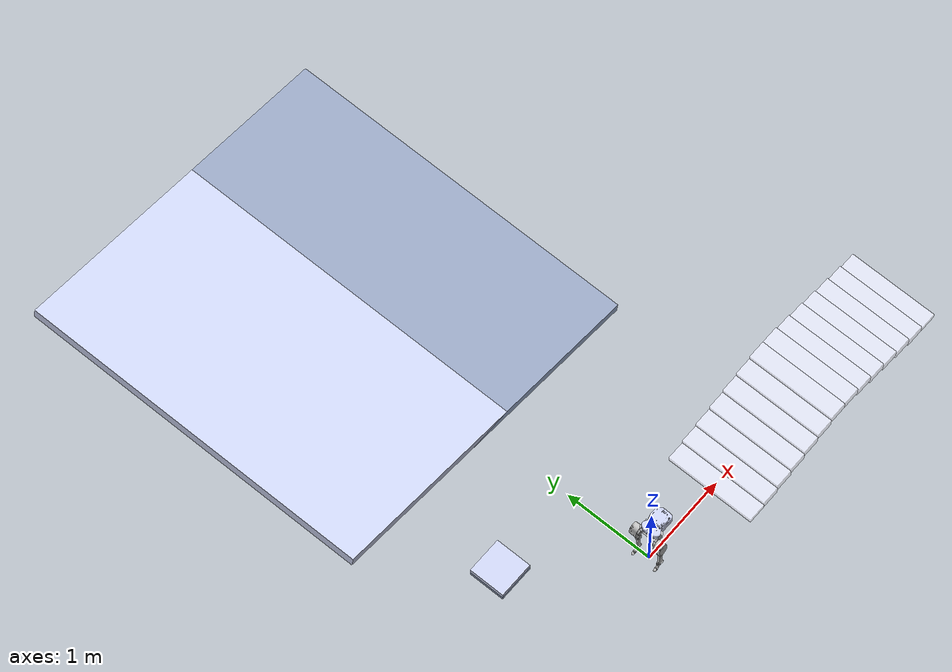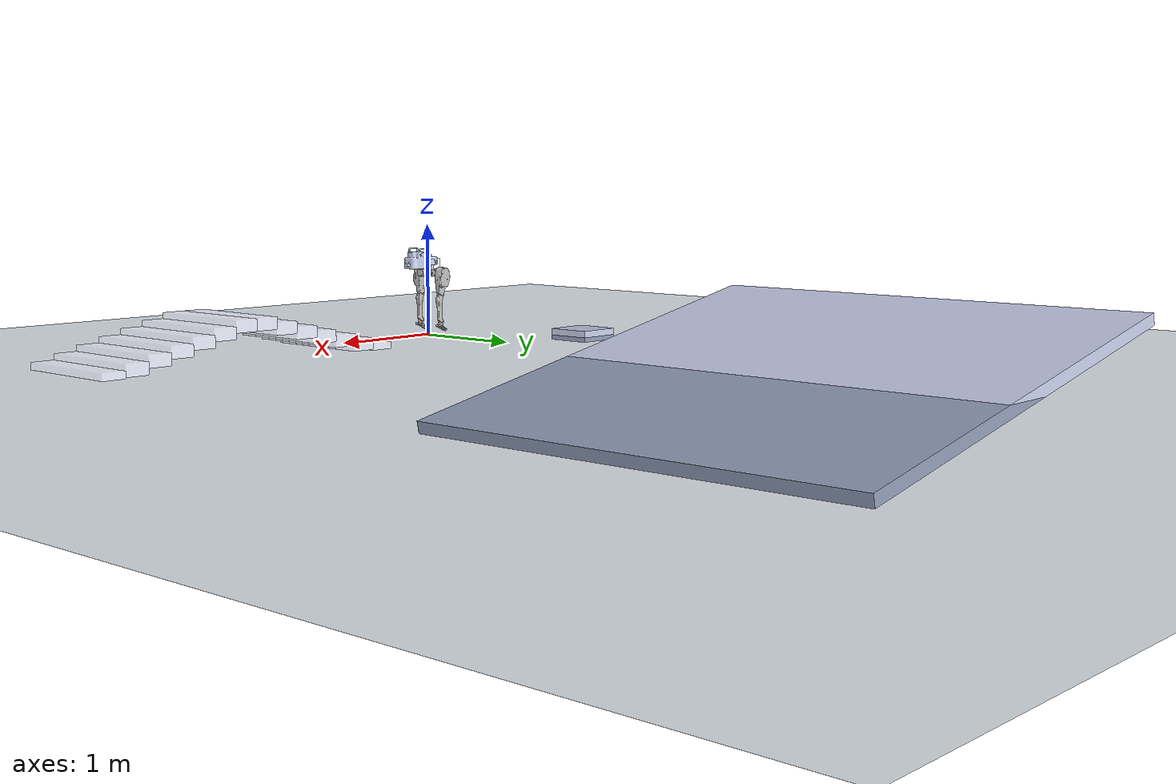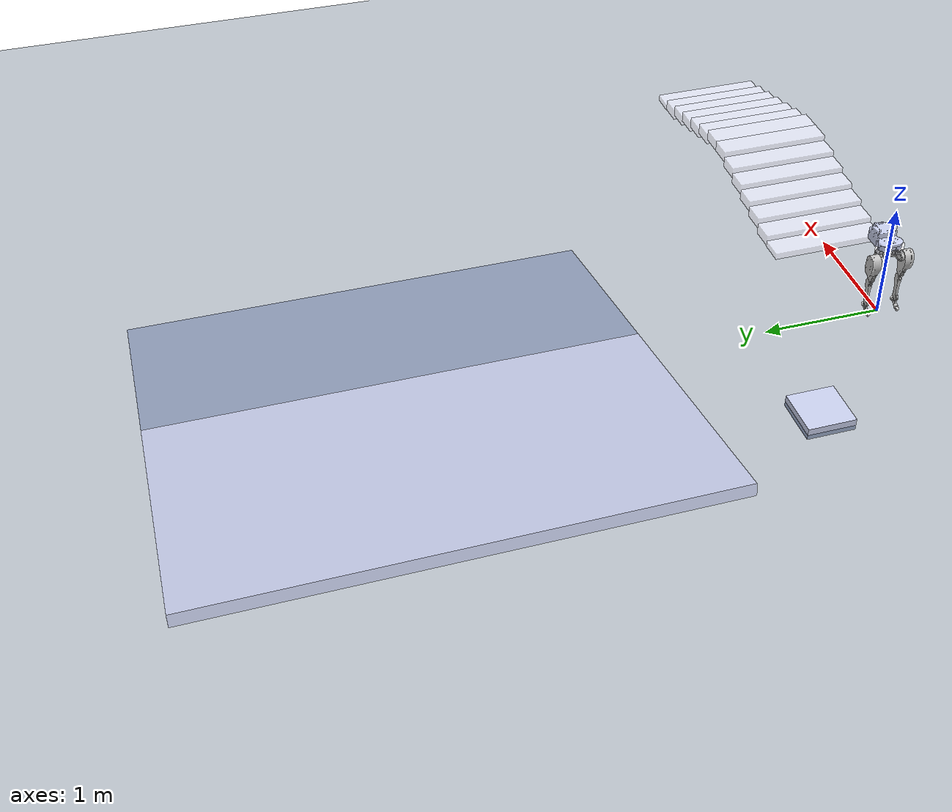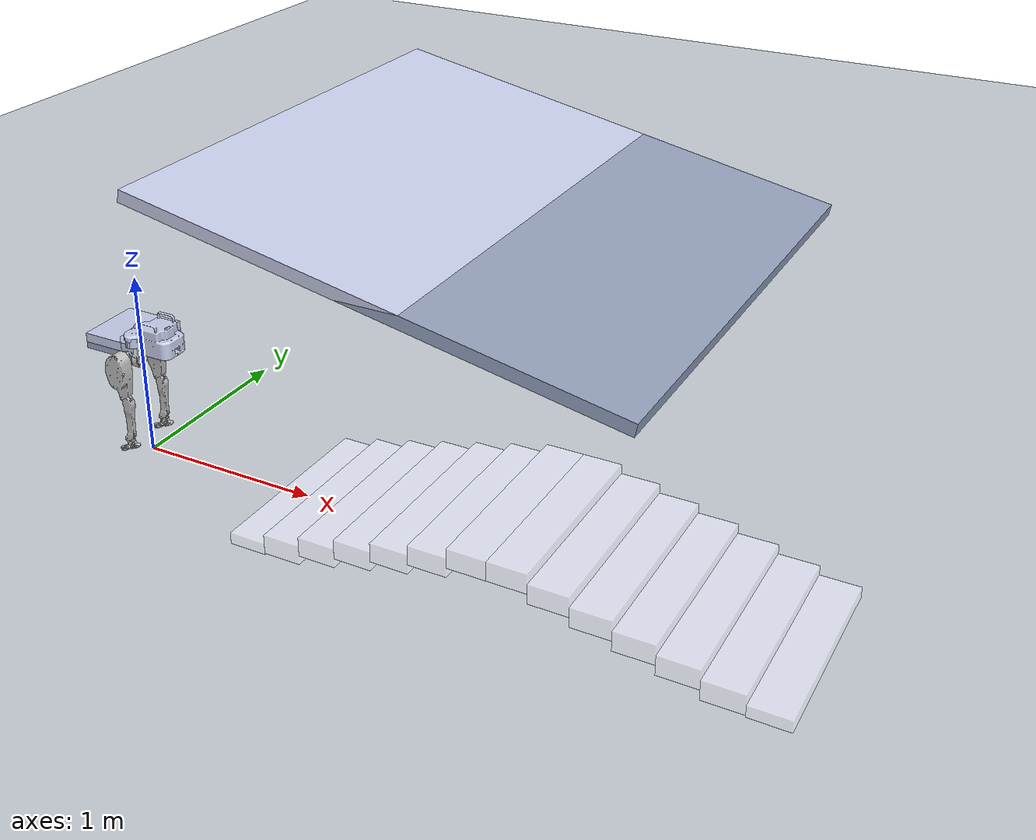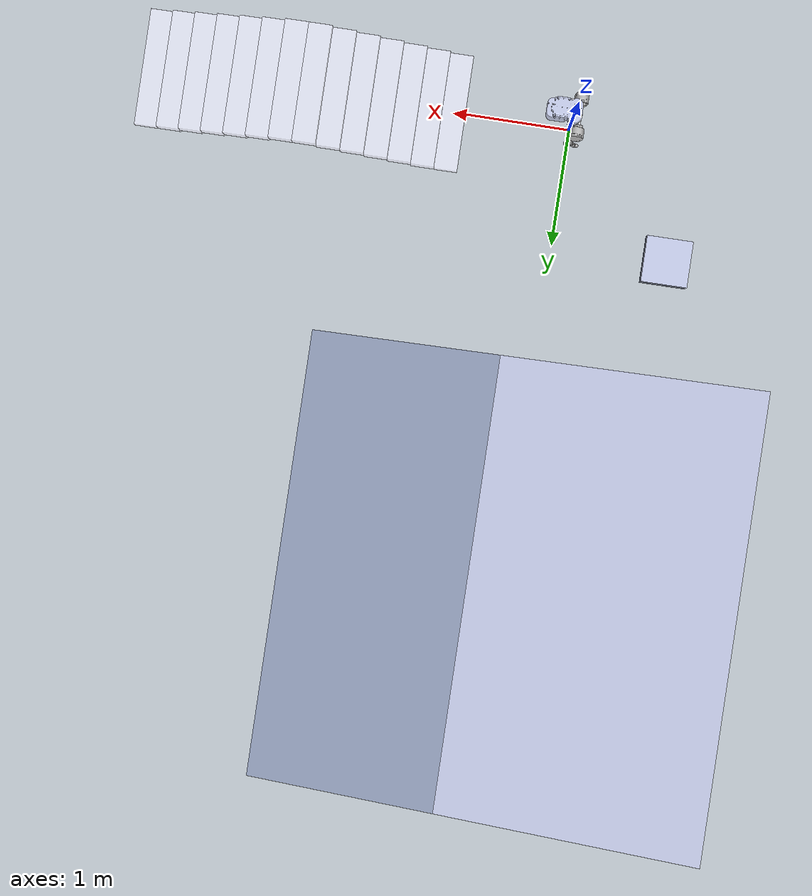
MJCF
<mujoco model="scene_birdy_v1_L">
  <include file="custom.xml"/>
  <include file="birdy_v1_L.xml"/>
  <visual>
    <headlight diffuse="0.6 0.6 0.6"  ambient="0.1 0.1 0.1" specular="0 0 0"/>
    <rgba haze="0.15 0.25 0.35 1"/>
    <global azimuth="120" elevation="-20"/>
  </visual>

  <asset>
    <texture type="skybox" builtin="gradient" rgb1="0.3 0.5 0.7" rgb2="0 0 0" width="512"
        height="3072"/>
    <texture type="2d" name="groundplane" builtin="checker" mark="edge" rgb1="0.2 0.3 0.4"
        rgb2="0.1 0.2 0.3" markrgb="0.8 0.8 0.8" width="300" height="300"/>
    <material name="groundplane" texture="groundplane" texuniform="true" texrepeat="5 5"
        reflectance="0.2"/>
  </asset>

  <worldbody>
    <light pos="0 0 1.5" dir="0 0 -1" directional="true"/>
    <geom name="geom_floor" size="0 0 0.05" type="plane" material="groundplane"/>
  </worldbody>
</mujoco>

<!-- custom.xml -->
<mujoco>
<asset>
    <material name="red" specular="0.5" shininess="0.25" rgba="0.9 0.0 0.0 0.5"/>
</asset>

<default>
 <default class="visual">
  <geom type="mesh" rgba="0.79216 0.81961 0.93333 1" contype="0" conaffinity="0" group="2"/>
 </default>

 <default class="collision_rod">
  <geom type="cylinder" material="red" group="1"/>
 </default>

 <default class="collision_box">
   <geom type="box" material="red" group="1"/>
 </default>
 <default class="collision_sphere">
   <geom type="sphere" material="red" group="1"/>
 </default>
 <default class="collision_motor">
  <geom type="cylinder" material="red" size="0.05 0.02" group="1"/>
 </default>

 <default class="collision">
  <geom type="mesh" material="red" group="1"/>
 </default>

 <default class="active">
  <!--tested good param with low sim-to-real gap -->
  <joint armature="1e-4" damping="0.02" frictionloss="0.02"/>
 </default>

 <default class="passive">
  <joint armature="1e-3" damping="0.01" frictionloss="0.01"/>
 </default>
</default>

<!-- terrain-->
<!-- stairs-->
<worldbody>
    <geom type="box" pos= "1 0 0" size="0.1 0.5 0.05" rgba="0.79216 0.81961 0.93333 0.5" solref="1e-3 1"/>
    <geom type="box" pos= "1.2 0 0.05" size="0.1 0.5 0.05" rgba="0.79216 0.81961 0.93333 0.5" solref="1e-3 1"/>
    <geom type="box" pos= "1.4 0 0.1" size="0.1 0.5 0.05" rgba="0.79216 0.81961 0.93333 0.5" solref="1e-3 1"/>
    <geom type="box" pos= "1.6 0 0.15" size="0.1 0.5 0.05" rgba="0.79216 0.81961 0.93333 0.5" solref="1e-3 1"/>
    <geom type="box" pos= "1.8 0 0.2" size="0.1 0.5 0.05" rgba="0.79216 0.81961 0.93333 0.5" solref="1e-3 1"/>
    <geom type="box" pos= "2.0 0 0.25" size="0.1 0.5 0.05" rgba="0.79216 0.81961 0.93333 0.5" solref="1e-3 1"/>
    <geom type="box" pos= "2.2 0 0.3" size="0.1 0.5 0.05" rgba="0.79216 0.81961 0.93333 0.5" solref="1e-3 1"/>

    <geom type="box" pos= "2.4 0 0.3" size="0.1 0.5 0.05" rgba="0.79216 0.81961 0.93333 0.5" solref="1e-3 1"/>
    <geom type="box" pos= "2.6 0 0.25" size="0.1 0.5 0.05" rgba="0.79216 0.81961 0.93333 0.5" solref="1e-3 1"/>
    <geom type="box" pos= "2.8 0 0.2" size="0.1 0.5 0.05" rgba="0.79216 0.81961 0.93333 0.5" solref="1e-3 1"/>
    <geom type="box" pos= "3.0 0 0.15" size="0.1 0.5 0.05" rgba="0.79216 0.81961 0.93333 0.5" solref="1e-3 1"/>
    <geom type="box" pos= "3.2 0 0.1" size="0.1 0.5 0.05" rgba="0.79216 0.81961 0.93333 0.5" solref="1e-3 1"/>
    <geom type="box" pos= "3.4 0 0.05" size="0.1 0.5 0.05" rgba="0.79216 0.81961 0.93333 0.5" solref="1e-3 1"/>
    <geom type="box" pos= "3.6 0 0.0" size="0.1 0.5 0.05" rgba="0.79216 0.81961 0.93333 0.5" solref="1e-3 1"/>

</worldbody>

<!-- platform-->
<worldbody>
    <geom type="box" pos= "-1 1 0" size="0.2 0.2 0.05" rgba="0.79216 0.81961 0.93333 1" solref="1e-3 1"/>
</worldbody>

<!-- slope-->
<worldbody>
    <geom type="box" pos= "0 4 0" quat="1 0 0.1 0" size="2 2 0.05" rgba="0.79216 0.81961 0.93333 1" solref="1e-3 1"/>
</worldbody>

</mujoco>

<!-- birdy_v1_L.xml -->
<mujoco model="birdy_v1_L">
  <compiler angle="radian" meshdir="../meshes/" autolimits="true"/>
  <asset>
    <mesh name="TRUNK" file="TRUNK_LOWER_LIMB.STL"/>
    <mesh name="HIP_ROLL_MOTOR_left" file="HIP_ROLL_MOTOR_left.STL"/>
    <mesh name="HIP_PITCH_MOTOR_left" file="HIP_PITCH_MOTOR_left.STL"/>
    <mesh name="THIGH_left" file="THIGH_left.STL"/>
    <mesh name="CALF_left" file="CALF_left.STL"/>
    <mesh name="FOOT_HEEL" file="FOOT_HEEL.STL"/>
    <mesh name="FOOT_TOE" file="FOOT_TOE.STL"/>
    <mesh name="FOOT_SHOE" file="FOOT_SHOE.STL"/>
    <mesh name="HIP_ROLL_MOTOR_right" file="HIP_ROLL_MOTOR_right.STL"/>
    <mesh name="HIP_PITCH_MOTOR_right" file="HIP_PITCH_MOTOR_right.STL"/>
    <mesh name="THIGH_right" file="THIGH_right.STL"/>
    <mesh name="CALF_right" file="CALF_right.STL"/>
  </asset>
  <worldbody>
    <body name="link_trunk" pos="0 0 0.65">
      <inertial pos="0.145 0 0.0274" quat="-0.00635543 0.693121 -0.00531223 0.720774" mass="4.4369" diaginertia="0.0371704 0.0338999 0.0170217"/>
      <joint name="joint_fixed_world" type="free"/>
      <geom type="mesh" contype="0" conaffinity="0" group="1" density="0" rgba="0.79216 0.81961 0.93333 1" mesh="TRUNK"/>
      <geom size="0.05 0.1 0.05" type="box" rgba="0.79216 0.81961 0.93333 0.1"/>
      <body name="link_left_hip1" pos="0 -0.061 -0.078">
        <inertial pos="0.0258 0.0003 0.0072" quat="0.999406 -0.00368641 0.0325393 -0.0107538" mass="0.4618" diaginertia="0.000527591 0.000410146 0.000287544"/>
        <joint class="active" name="joint_left_hip_yaw" pos="0 0 0" axis="0 0 1" range="-2.98451 2.98451"/>
        <geom type="mesh" contype="0" conaffinity="0" group="1" density="0" rgba="0.752941 0.752941 0.752941 1" mesh="HIP_ROLL_MOTOR_left"/>
        <body name="link_left_hip2" pos="-0.04 0 0">
          <inertial pos="0.0014 -0.0362 0" quat="0.544526 0.543892 0.451913 0.451052" mass="0.4221" diaginertia="0.000406728 0.000312156 0.000267317"/>
          <joint class="active" name="joint_left_hip_roll" pos="0 0 0" axis="1 0 0" range="-3.14 3.14"/>
          <geom type="mesh" contype="0" conaffinity="0" group="1" density="0" rgba="0.752941 0.752941 0.752941 1" mesh="HIP_PITCH_MOTOR_left"/>
          <body name="link_left_thigh" pos="0 -0.0715 0">
            <inertial pos="0.0019 -0.0168 -0.0491" quat="0.730791 0.00928832 0.0310298 0.681832" mass="1.2707" diaginertia="0.00512429 0.00472956 0.00149245"/>
            <joint class="active" name="joint_left_thigh_pitch" pos="0 0 0" axis="0 1 0" range="-3.14 3.14"/>
            <geom type="mesh" contype="0" conaffinity="0" group="1" density="0" rgba="0.752941 0.752941 0.752941 1" mesh="THIGH_left"/>
            <body name="link_left_calf" pos="0 0 -0.2">
              <inertial pos="0.02422 0 -0.103491" quat="0.704725 -0.00409177 -0.00372737 0.709459" mass="0.218165" diaginertia="0.00140017 0.0013533 0.000102796"/>
              <joint class="active" name="joint_left_calf_pitch" pos="0 0 0" axis="0 1 0" range="-3.14 3.14"/>
              <geom type="mesh" contype="0" conaffinity="0" group="1" density="0" rgba="0.752941 0.752941 0.752941 1" mesh="CALF_left"/>
              <body name="link_left_foot" pos="0 0 -0.25">
                <inertial pos="0.0065 0 -0.044826" quat="0.358759 0.606751 0.613894 0.355358" mass="0.150205" diaginertia="0.000283562 0.000258242 5.56389e-05"/>
                <joint class="active" name="joint_left_ankle" pos="0 0 0" axis="0 1 0" range="-3.14 3.14"/>
                <geom type="mesh" contype="0" conaffinity="0" group="1" density="0" rgba="0.752941 0.752941 0.752941 1" mesh="FOOT_HEEL"/>
                <geom type="mesh" contype="0" conaffinity="0" group="1" density="0" rgba="0.752941 0.752941 0.752941 1" mesh="FOOT_TOE"/>
                <geom size="0.005" pos="-0.02 0 -0.075" type="sphere" material="red" group="2"/>
                <geom size="0.005" pos="0.06 0 -0.038"  type="sphere" material="red" group="2"/>
                <geom size="0.005" pos="0.02 0 -0.0565"  type="sphere" material="red" group="2"/>
              </body>
            </body>
          </body>
        </body>
      </body>
      <body name="link_right_hip1" pos="0 0.061 -0.078">
        <inertial pos="0.0258 -0.0003 0.0072" quat="0.999406 0.00368641 0.0325393 0.0107538" mass="0.4618" diaginertia="0.000527591 0.000410146 0.000287544"/>
        <joint class="active" name="joint_right_hip_yaw" pos="0 0 0" axis="0 0 1" range="-2.98451 2.98451"/>
        <geom type="mesh" contype="0" conaffinity="0" group="1" density="0" rgba="0.752941 0.752941 0.752941 1" mesh="HIP_ROLL_MOTOR_right"/>
        <body name="link_right_hip2" pos="-0.04 0 0">
          <inertial pos="0.0014 0.0362 0" quat="0.451913 0.451052 0.544526 0.543892" mass="0.4221" diaginertia="0.000406728 0.000312156 0.000267317"/>
          <joint class="active" name="joint_right_hip_roll" pos="0 0 0" axis="1 0 0" range="-3.14 3.14"/>
          <geom type="mesh" contype="0" conaffinity="0" group="1" density="0" rgba="0.752941 0.752941 0.752941 1" mesh="HIP_PITCH_MOTOR_right"/>
          <body name="link_right_thigh" pos="0 0.0715 0">
            <inertial pos="0.0019 0.0168 -0.0491" quat="0.681832 0.0310298 0.00928832 0.730791" mass="1.2707" diaginertia="0.00512429 0.00472956 0.00149245"/>
            <joint class="active" name="joint_right_thigh_pitch" pos="0 0 0" axis="0 1 0" range="-3.14 3.14"/>
            <geom type="mesh" contype="0" conaffinity="0" group="1" density="0" rgba="0.752941 0.752941 0.752941 1" mesh="THIGH_right"/>
            <body name="link_right_calf" pos="0 0 -0.2">
              <inertial pos="0.02422 0 -0.103491" quat="0.709459 -0.00372737 -0.00409177 0.704725" mass="0.21302" diaginertia="0.00140017 0.0013533 0.000102796"/>
              <joint class="active" name="joint_right_calf_pitch" pos="0 0 0" axis="0 1 0" range="-3.14 3.14"/>
              <geom type="mesh" contype="0" conaffinity="0" group="1" density="0" rgba="0.752941 0.752941 0.752941 1" mesh="CALF_right"/>
              <body name="link_right_foot" pos="0 0 -0.25">
                <inertial pos="0.0065 0 -0.044826" quat="0.358759 0.606751 0.613894 0.355358" mass="0.150205" diaginertia="0.000283562 0.000258242 5.56389e-05"/>
                <joint class="active" name="joint_right_ankle" pos="0 0 0" axis="0 1 0" range="-3.14 3.14"/>
                <geom type="mesh" contype="0" conaffinity="0" group="1" density="0" rgba="0.752941 0.752941 0.752941 1" mesh="FOOT_HEEL"/>
                <geom type="mesh" contype="0" conaffinity="0" group="1" density="0" rgba="0.752941 0.752941 0.752941 1" mesh="FOOT_TOE"/>
                <geom size="0.005" pos="-0.02 0 -0.075" type="sphere" material="red" group="2"/>
                <geom size="0.005" pos="0.06 0 -0.038"  type="sphere" material="red" group="2"/>
                <geom size="0.005" pos="0.02 0 -0.0565"  type="sphere" material="red" group="2"/>
              </body>
            </body>
          </body>
        </body>
      </body>
    </body>
  </worldbody>
  <actuator>
    <motor name="joint_left_1" joint="joint_left_hip_yaw" ctrlrange="-20 20"/>
    <motor name="joint_left_2" joint="joint_left_hip_roll" ctrlrange="-20 20"/>
    <motor name="joint_left_3" joint="joint_left_thigh_pitch" ctrlrange="-20 20"/>
    <motor name="joint_left_4" joint="joint_left_calf_pitch" ctrlrange="-20 20"/>
    <motor name="joint_left_5" joint="joint_left_ankle" ctrlrange="-20 20"/>
    <motor name="joint_right_1" joint="joint_right_hip_yaw" ctrlrange="-20 20"/>
    <motor name="joint_right_2" joint="joint_right_hip_roll" ctrlrange="-20 20"/>
    <motor name="joint_right_3" joint="joint_right_thigh_pitch" ctrlrange="-20 20"/>
    <motor name="joint_right_4" joint="joint_right_calf_pitch" ctrlrange="-20 20"/>
    <motor name="joint_right_5" joint="joint_right_ankle" ctrlrange="-20 20"/>
  </actuator>
  <keyframe>
    <key name="ready"
     qpos="0 0 0.55 1 0 0 0
           0 0 -0.817676 1.2 0
           0 0 -0.817676 1.2 0"/>
  </keyframe>
</mujoco>
